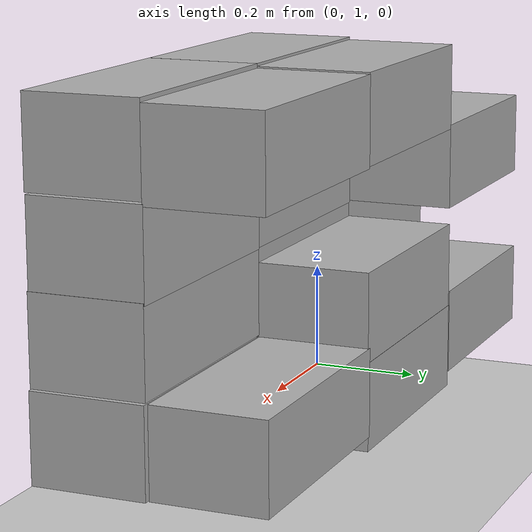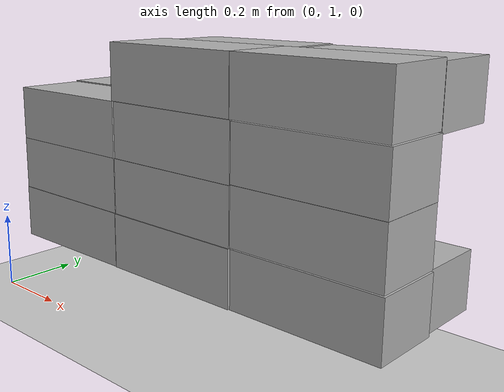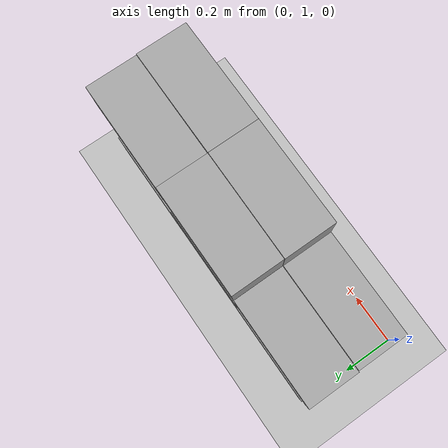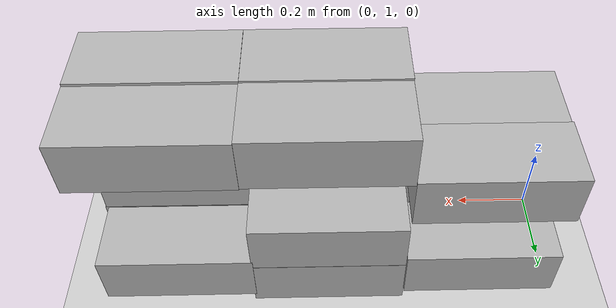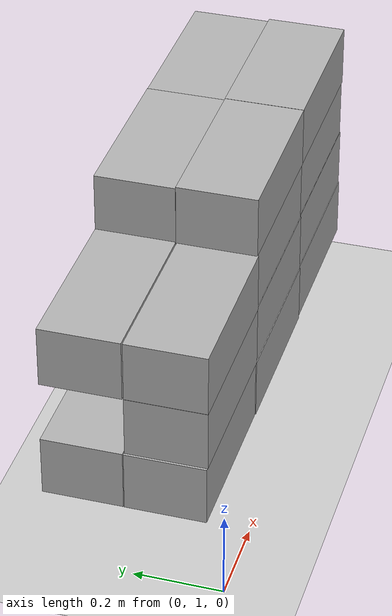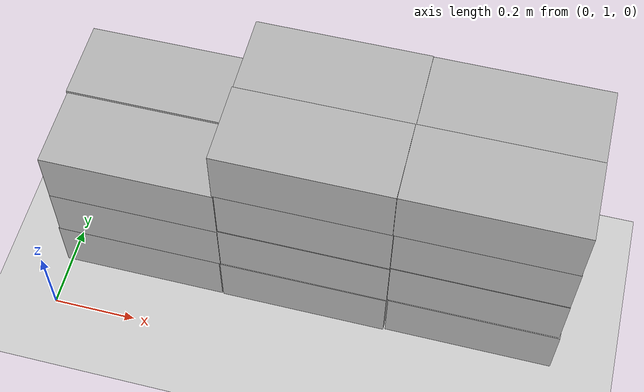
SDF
<sdf version="1.7">
 <world name="default">
  <model name="ground_plane">
   <static>1</static>
   <link name="link">
    <collision name="collision">
     <geometry><plane><normal>0 0 1</normal><size>100 100</size></plane></geometry>
     <surface>
      <contact><collide_bitmask>65535</collide_bitmask></contact>
      <friction><ode><mu>100</mu><mu2>50</mu2></ode></friction>
     </surface>
    </collision>
    <visual name="visual">
     <cast_shadows>0</cast_shadows>
     <geometry><plane><normal>0 0 1</normal><size>100 100</size></plane></geometry>
     <material>
      <script><uri>file://media/materials/scripts/gazebo.material</uri><name>Gazebo/Gray</name></script>
     </material>
    </visual>
   </link>
  </model>
  <model name="box_38_18_14">
   <link name="link_0">
    <inertial>
     <mass>2.5</mass>
     <inertia>
      <ixx>0.0108332</ixx>
      <ixy>0</ixy>
      <ixz>0</ixz>
      <iyy>0.0341665</iyy>
      <iyz>0</iyz>
      <izz>0.0368332</izz>
     </inertia>
    </inertial>
    <visual name="visual">
     <geometry><box><size>0.38 0.18 0.14</size></box></geometry>
     <material>
      <lighting>1</lighting>
      <script><uri>file://media/materials/scripts/cardpaper.material</uri><name>cardpaper</name></script>
      <shader type="pixel"><normal_map>__default__</normal_map></shader>
      <ambient>0.3 0.3 0.3 1</ambient>
      <diffuse>0.7 0.7 0.7 1</diffuse>
      <specular>0.01 0.01 0.01 1</specular>
      <emissive>0 0 0 1</emissive>
     </material>
    </visual>
    <collision name="collision">
     <geometry><box><size>0.38 0.18 0.14</size></box></geometry>
     <surface>
      <friction>
       <ode><mu>0.6</mu><mu2>0.6</mu2><fdir1>0 0 0</fdir1><slip1>0</slip1><slip2>0</slip2></ode>
       <torsional>
        <coefficient>1</coefficient>
        <patch_radius>0</patch_radius>
        <surface_radius>0</surface_radius>
        <use_patch_radius>1</use_patch_radius>
        <ode><slip>0</slip></ode>
       </torsional>
      </friction>
      <bounce><restitution_coefficient>0</restitution_coefficient><threshold>1e+06</threshold></bounce>
      <contact>
       <collide_without_contact>0</collide_without_contact>
       <collide_without_contact_bitmask>1</collide_without_contact_bitmask>
       <collide_bitmask>1</collide_bitmask>
       <ode>
        <soft_cfm>0</soft_cfm>
        <soft_erp>0.2</soft_erp>
        <kp>1e+13</kp>
        <kd>1</kd>
        <max_vel>0.01</max_vel>
        <min_depth>0.01</min_depth>
       </ode>
       <bullet>
        <split_impulse>1</split_impulse>
        <split_impulse_penetration_threshold>-0.01</split_impulse_penetration_threshold>
        <soft_cfm>0</soft_cfm>
        <soft_erp>0.2</soft_erp>
        <kp>1e+13</kp>
        <kd>1</kd>
       </bullet>
      </contact>
     </surface>
    </collision>
   </link>
   <static>0</static>
   <pose>0.990718 1.14029 0.63626 0.000484 0.001138 0.001894</pose>
  </model>
  <model name="box_38_18_14_0">
   <link name="link_0">
    <inertial>
     <mass>2.5</mass>
     <inertia>
      <ixx>0.0108332</ixx>
      <ixy>0</ixy>
      <ixz>0</ixz>
      <iyy>0.0341665</iyy>
      <iyz>0</iyz>
      <izz>0.0368332</izz>
     </inertia>
    </inertial>
    <visual name="visual">
     <geometry><box><size>0.38 0.18 0.14</size></box></geometry>
     <material>
      <lighting>1</lighting>
      <script><uri>file://media/materials/scripts/cardpaper.material</uri><name>cardpaper</name></script>
      <shader type="pixel"><normal_map>__default__</normal_map></shader>
      <ambient>0.3 0.3 0.3 1</ambient>
      <diffuse>0.7 0.7 0.7 1</diffuse>
      <specular>0.01 0.01 0.01 1</specular>
      <emissive>0 0 0 1</emissive>
     </material>
    </visual>
    <collision name="collision">
     <geometry><box><size>0.38 0.18 0.14</size></box></geometry>
     <surface>
      <friction>
       <ode><mu>0.6</mu><mu2>0.6</mu2><fdir1>0 0 0</fdir1><slip1>0</slip1><slip2>0</slip2></ode>
       <torsional>
        <coefficient>1</coefficient>
        <patch_radius>0</patch_radius>
        <surface_radius>0</surface_radius>
        <use_patch_radius>1</use_patch_radius>
        <ode><slip>0</slip></ode>
       </torsional>
      </friction>
      <bounce><restitution_coefficient>0</restitution_coefficient><threshold>1e+06</threshold></bounce>
      <contact>
       <collide_without_contact>0</collide_without_contact>
       <collide_without_contact_bitmask>1</collide_without_contact_bitmask>
       <collide_bitmask>1</collide_bitmask>
       <ode>
        <soft_cfm>0</soft_cfm>
        <soft_erp>0.2</soft_erp>
        <kp>1e+13</kp>
        <kd>1</kd>
        <max_vel>0.01</max_vel>
        <min_depth>0.01</min_depth>
       </ode>
       <bullet>
        <split_impulse>1</split_impulse>
        <split_impulse_penetration_threshold>-0.01</split_impulse_penetration_threshold>
        <soft_cfm>0</soft_cfm>
        <soft_erp>0.2</soft_erp>
        <kp>1e+13</kp>
        <kd>1</kd>
       </bullet>
      </contact>
     </surface>
    </collision>
   </link>
   <static>0</static>
   <pose>0.610379 1.13953 0.636527 0.0002 0.000296 0.000292</pose>
  </model>
  <model name="box_38_18_14_1">
   <link name="link_0">
    <inertial>
     <mass>2.5</mass>
     <inertia>
      <ixx>0.0108332</ixx>
      <ixy>0</ixy>
      <ixz>0</ixz>
      <iyy>0.0341665</iyy>
      <iyz>0</iyz>
      <izz>0.0368332</izz>
     </inertia>
    </inertial>
    <visual name="visual">
     <geometry><box><size>0.38 0.18 0.14</size></box></geometry>
     <material>
      <lighting>1</lighting>
      <script><uri>file://media/materials/scripts/cardpaper.material</uri><name>cardpaper</name></script>
      <shader type="pixel"><normal_map>__default__</normal_map></shader>
      <ambient>0.3 0.3 0.3 1</ambient>
      <diffuse>0.7 0.7 0.7 1</diffuse>
      <specular>0.01 0.01 0.01 1</specular>
      <emissive>0 0 0 1</emissive>
     </material>
    </visual>
    <collision name="collision">
     <geometry><box><size>0.38 0.18 0.14</size></box></geometry>
     <surface>
      <friction>
       <ode><mu>0.6</mu><mu2>0.6</mu2><fdir1>0 0 0</fdir1><slip1>0</slip1><slip2>0</slip2></ode>
       <torsional>
        <coefficient>1</coefficient>
        <patch_radius>0</patch_radius>
        <surface_radius>0</surface_radius>
        <use_patch_radius>1</use_patch_radius>
        <ode><slip>0</slip></ode>
       </torsional>
      </friction>
      <bounce><restitution_coefficient>0</restitution_coefficient><threshold>1e+06</threshold></bounce>
      <contact>
       <collide_without_contact>0</collide_without_contact>
       <collide_without_contact_bitmask>1</collide_without_contact_bitmask>
       <collide_bitmask>1</collide_bitmask>
       <ode>
        <soft_cfm>0</soft_cfm>
        <soft_erp>0.2</soft_erp>
        <kp>1e+13</kp>
        <kd>1</kd>
        <max_vel>0.01</max_vel>
        <min_depth>0.01</min_depth>
       </ode>
       <bullet>
        <split_impulse>1</split_impulse>
        <split_impulse_penetration_threshold>-0.01</split_impulse_penetration_threshold>
        <soft_cfm>0</soft_cfm>
        <soft_erp>0.2</soft_erp>
        <kp>1e+13</kp>
        <kd>1</kd>
       </bullet>
      </contact>
     </surface>
    </collision>
   </link>
   <static>1</static>
   <pose>0.995594 1.14055 0.215337 -2.4e-05 -3.2e-05 -0.000547</pose>
  </model>
  <model name="box_38_18_14_2">
   <link name="link_0">
    <inertial>
     <mass>2.5</mass>
     <inertia>
      <ixx>0.0108332</ixx>
      <ixy>0</ixy>
      <ixz>0</ixz>
      <iyy>0.0341665</iyy>
      <iyz>0</iyz>
      <izz>0.0368332</izz>
     </inertia>
    </inertial>
    <visual name="visual">
     <geometry><box><size>0.38 0.18 0.14</size></box></geometry>
     <material>
      <lighting>1</lighting>
      <script><uri>file://media/materials/scripts/cardpaper.material</uri><name>cardpaper</name></script>
      <shader type="pixel"><normal_map>__default__</normal_map></shader>
      <ambient>0.3 0.3 0.3 1</ambient>
      <diffuse>0.7 0.7 0.7 1</diffuse>
      <specular>0.01 0.01 0.01 1</specular>
      <emissive>0 0 0 1</emissive>
     </material>
    </visual>
    <collision name="collision">
     <geometry><box><size>0.38 0.18 0.14</size></box></geometry>
     <surface>
      <friction>
       <ode><mu>0.6</mu><mu2>0.6</mu2><fdir1>0 0 0</fdir1><slip1>0</slip1><slip2>0</slip2></ode>
       <torsional>
        <coefficient>1</coefficient>
        <patch_radius>0</patch_radius>
        <surface_radius>0</surface_radius>
        <use_patch_radius>1</use_patch_radius>
        <ode><slip>0</slip></ode>
       </torsional>
      </friction>
      <bounce><restitution_coefficient>0</restitution_coefficient><threshold>1e+06</threshold></bounce>
      <contact>
       <collide_without_contact>0</collide_without_contact>
       <collide_without_contact_bitmask>1</collide_without_contact_bitmask>
       <collide_bitmask>1</collide_bitmask>
       <ode>
        <soft_cfm>0</soft_cfm>
        <soft_erp>0.2</soft_erp>
        <kp>1e+13</kp>
        <kd>1</kd>
        <max_vel>0.01</max_vel>
        <min_depth>0.01</min_depth>
       </ode>
       <bullet>
        <split_impulse>1</split_impulse>
        <split_impulse_penetration_threshold>-0.01</split_impulse_penetration_threshold>
        <soft_cfm>0</soft_cfm>
        <soft_erp>0.2</soft_erp>
        <kp>1e+13</kp>
        <kd>1</kd>
       </bullet>
      </contact>
     </surface>
    </collision>
   </link>
   <static>1</static>
   <pose>0.61176 1.13834 0.214923 3.5e-05 -1.8e-05 0.000435</pose>
  </model>
  <model name="box_38_18_14_3">
   <link name="link_0">
    <inertial>
     <mass>2.5</mass>
     <inertia>
      <ixx>0.0108332</ixx>
      <ixy>0</ixy>
      <ixz>0</ixz>
      <iyy>0.0341665</iyy>
      <iyz>0</iyz>
      <izz>0.0368332</izz>
     </inertia>
    </inertial>
    <visual name="visual">
     <geometry><box><size>0.38 0.18 0.14</size></box></geometry>
     <material>
      <lighting>1</lighting>
      <script><uri>file://media/materials/scripts/cardpaper.material</uri><name>cardpaper</name></script>
      <shader type="pixel"><normal_map>__default__</normal_map></shader>
      <ambient>0.3 0.3 0.3 1</ambient>
      <diffuse>0.7 0.7 0.7 1</diffuse>
      <specular>0.01 0.01 0.01 1</specular>
      <emissive>0 0 0 1</emissive>
     </material>
    </visual>
    <collision name="collision">
     <geometry><box><size>0.38 0.18 0.14</size></box></geometry>
     <surface>
      <friction>
       <ode><mu>0.6</mu><mu2>0.6</mu2><fdir1>0 0 0</fdir1><slip1>0</slip1><slip2>0</slip2></ode>
       <torsional>
        <coefficient>1</coefficient>
        <patch_radius>0</patch_radius>
        <surface_radius>0</surface_radius>
        <use_patch_radius>1</use_patch_radius>
        <ode><slip>0</slip></ode>
       </torsional>
      </friction>
      <bounce><restitution_coefficient>0</restitution_coefficient><threshold>1e+06</threshold></bounce>
      <contact>
       <collide_without_contact>0</collide_without_contact>
       <collide_without_contact_bitmask>1</collide_without_contact_bitmask>
       <collide_bitmask>1</collide_bitmask>
       <ode>
        <soft_cfm>0</soft_cfm>
        <soft_erp>0.2</soft_erp>
        <kp>1e+13</kp>
        <kd>1</kd>
        <max_vel>0.01</max_vel>
        <min_depth>0.01</min_depth>
       </ode>
       <bullet>
        <split_impulse>1</split_impulse>
        <split_impulse_penetration_threshold>-0.01</split_impulse_penetration_threshold>
        <soft_cfm>0</soft_cfm>
        <soft_erp>0.2</soft_erp>
        <kp>1e+13</kp>
        <kd>1</kd>
       </bullet>
      </contact>
     </surface>
    </collision>
   </link>
   <static>1</static>
   <pose>0.229172 1.13951 0.215224 2.7e-05 -2e-05 5e-06</pose>
  </model>
  <model name="box_38_18_14_4">
   <link name="link_0">
    <inertial>
     <mass>2.5</mass>
     <inertia>
      <ixx>0.0108332</ixx>
      <ixy>0</ixy>
      <ixz>0</ixz>
      <iyy>0.0341665</iyy>
      <iyz>0</iyz>
      <izz>0.0368332</izz>
     </inertia>
    </inertial>
    <visual name="visual">
     <geometry><box><size>0.38 0.18 0.14</size></box></geometry>
     <material>
      <lighting>1</lighting>
      <script><uri>file://media/materials/scripts/cardpaper.material</uri><name>cardpaper</name></script>
      <shader type="pixel"><normal_map>__default__</normal_map></shader>
      <ambient>0.3 0.3 0.3 1</ambient>
      <diffuse>0.7 0.7 0.7 1</diffuse>
      <specular>0.01 0.01 0.01 1</specular>
      <emissive>0 0 0 1</emissive>
     </material>
    </visual>
    <collision name="collision">
     <geometry><box><size>0.38 0.18 0.14</size></box></geometry>
     <surface>
      <friction>
       <ode><mu>0.6</mu><mu2>0.6</mu2><fdir1>0 0 0</fdir1><slip1>0</slip1><slip2>0</slip2></ode>
       <torsional>
        <coefficient>1</coefficient>
        <patch_radius>0</patch_radius>
        <surface_radius>0</surface_radius>
        <use_patch_radius>1</use_patch_radius>
        <ode><slip>0</slip></ode>
       </torsional>
      </friction>
      <bounce><restitution_coefficient>0</restitution_coefficient><threshold>1e+06</threshold></bounce>
      <contact>
       <collide_without_contact>0</collide_without_contact>
       <collide_without_contact_bitmask>1</collide_without_contact_bitmask>
       <collide_bitmask>1</collide_bitmask>
       <ode>
        <soft_cfm>0</soft_cfm>
        <soft_erp>0.2</soft_erp>
        <kp>1e+13</kp>
        <kd>1</kd>
        <max_vel>0.01</max_vel>
        <min_depth>0.01</min_depth>
       </ode>
       <bullet>
        <split_impulse>1</split_impulse>
        <split_impulse_penetration_threshold>-0.01</split_impulse_penetration_threshold>
        <soft_cfm>0</soft_cfm>
        <soft_erp>0.2</soft_erp>
        <kp>1e+13</kp>
        <kd>1</kd>
       </bullet>
      </contact>
     </surface>
    </collision>
   </link>
   <static>1</static>
   <pose>0.98709 1.3217 0.21457 -2.4e-05 -1.9e-05 -1.8e-05</pose>
  </model>
  <model name="box_38_18_14_5">
   <link name="link_0">
    <inertial>
     <mass>2.5</mass>
     <inertia>
      <ixx>0.0108332</ixx>
      <ixy>0</ixy>
      <ixz>0</ixz>
      <iyy>0.0341665</iyy>
      <iyz>0</iyz>
      <izz>0.0368332</izz>
     </inertia>
    </inertial>
    <visual name="visual">
     <geometry><box><size>0.38 0.18 0.14</size></box></geometry>
     <material>
      <lighting>1</lighting>
      <script><uri>file://media/materials/scripts/cardpaper.material</uri><name>cardpaper</name></script>
      <shader type="pixel"><normal_map>__default__</normal_map></shader>
      <ambient>0.3 0.3 0.3 1</ambient>
      <diffuse>0.7 0.7 0.7 1</diffuse>
      <specular>0.01 0.01 0.01 1</specular>
      <emissive>0 0 0 1</emissive>
     </material>
    </visual>
    <collision name="collision">
     <geometry><box><size>0.38 0.18 0.14</size></box></geometry>
     <surface>
      <friction>
       <ode><mu>0.6</mu><mu2>0.6</mu2><fdir1>0 0 0</fdir1><slip1>0</slip1><slip2>0</slip2></ode>
       <torsional>
        <coefficient>1</coefficient>
        <patch_radius>0</patch_radius>
        <surface_radius>0</surface_radius>
        <use_patch_radius>1</use_patch_radius>
        <ode><slip>0</slip></ode>
       </torsional>
      </friction>
      <bounce><restitution_coefficient>0</restitution_coefficient><threshold>1e+06</threshold></bounce>
      <contact>
       <collide_without_contact>0</collide_without_contact>
       <collide_without_contact_bitmask>1</collide_without_contact_bitmask>
       <collide_bitmask>1</collide_bitmask>
       <ode>
        <soft_cfm>0</soft_cfm>
        <soft_erp>0.2</soft_erp>
        <kp>1e+13</kp>
        <kd>1</kd>
        <max_vel>0.01</max_vel>
        <min_depth>0.01</min_depth>
       </ode>
       <bullet>
        <split_impulse>1</split_impulse>
        <split_impulse_penetration_threshold>-0.01</split_impulse_penetration_threshold>
        <soft_cfm>0</soft_cfm>
        <soft_erp>0.2</soft_erp>
        <kp>1e+13</kp>
        <kd>1</kd>
       </bullet>
      </contact>
     </surface>
    </collision>
   </link>
   <static>1</static>
   <pose>0.61137 1.32116 0.191996 -1e-06 -2.4e-05 -0.000217</pose>
  </model>
  <model name="box_38_18_14_6">
   <link name="link_0">
    <inertial>
     <mass>2.5</mass>
     <inertia>
      <ixx>0.0108332</ixx>
      <ixy>0</ixy>
      <ixz>0</ixz>
      <iyy>0.0341665</iyy>
      <iyz>0</iyz>
      <izz>0.0368332</izz>
     </inertia>
    </inertial>
    <visual name="visual">
     <geometry><box><size>0.38 0.18 0.14</size></box></geometry>
     <material>
      <lighting>1</lighting>
      <script><uri>file://media/materials/scripts/cardpaper.material</uri><name>cardpaper</name></script>
      <shader type="pixel"><normal_map>__default__</normal_map></shader>
      <ambient>0.3 0.3 0.3 1</ambient>
      <diffuse>0.7 0.7 0.7 1</diffuse>
      <specular>0.01 0.01 0.01 1</specular>
      <emissive>0 0 0 1</emissive>
     </material>
    </visual>
    <collision name="collision">
     <geometry><box><size>0.38 0.18 0.14</size></box></geometry>
     <surface>
      <friction>
       <ode><mu>0.6</mu><mu2>0.6</mu2><fdir1>0 0 0</fdir1><slip1>0</slip1><slip2>0</slip2></ode>
       <torsional>
        <coefficient>1</coefficient>
        <patch_radius>0</patch_radius>
        <surface_radius>0</surface_radius>
        <use_patch_radius>1</use_patch_radius>
        <ode><slip>0</slip></ode>
       </torsional>
      </friction>
      <bounce><restitution_coefficient>0</restitution_coefficient><threshold>1e+06</threshold></bounce>
      <contact>
       <collide_without_contact>0</collide_without_contact>
       <collide_without_contact_bitmask>1</collide_without_contact_bitmask>
       <collide_bitmask>1</collide_bitmask>
       <ode>
        <soft_cfm>0</soft_cfm>
        <soft_erp>0.2</soft_erp>
        <kp>1e+13</kp>
        <kd>1</kd>
        <max_vel>0.01</max_vel>
        <min_depth>0.01</min_depth>
       </ode>
       <bullet>
        <split_impulse>1</split_impulse>
        <split_impulse_penetration_threshold>-0.01</split_impulse_penetration_threshold>
        <soft_cfm>0</soft_cfm>
        <soft_erp>0.2</soft_erp>
        <kp>1e+13</kp>
        <kd>1</kd>
       </bullet>
      </contact>
     </surface>
    </collision>
   </link>
   <static>1</static>
   <pose>0.228982 1.32157 0.215841 2.7e-05 -2.1e-05 0.000396</pose>
  </model>
  <model name="box_38_18_14_13">
   <link name="link_0">
    <inertial>
     <mass>2.5</mass>
     <inertia>
      <ixx>0.0108332</ixx>
      <ixy>0</ixy>
      <ixz>0</ixz>
      <iyy>0.0341665</iyy>
      <iyz>0</iyz>
      <izz>0.0368332</izz>
     </inertia>
    </inertial>
    <visual name="visual">
     <geometry><box><size>0.38 0.18 0.14</size></box></geometry>
     <material>
      <lighting>1</lighting>
      <script><uri>file://media/materials/scripts/cardpaper.material</uri><name>cardpaper</name></script>
      <shader type="pixel"><normal_map>__default__</normal_map></shader>
      <ambient>0.3 0.3 0.3 1</ambient>
      <diffuse>0.7 0.7 0.7 1</diffuse>
      <specular>0.01 0.01 0.01 1</specular>
      <emissive>0 0 0 1</emissive>
     </material>
    </visual>
    <collision name="collision">
     <geometry><box><size>0.38 0.18 0.14</size></box></geometry>
     <surface>
      <friction>
       <ode><mu>0.6</mu><mu2>0.6</mu2><fdir1>0 0 0</fdir1><slip1>0</slip1><slip2>0</slip2></ode>
       <torsional>
        <coefficient>1</coefficient>
        <patch_radius>0</patch_radius>
        <surface_radius>0</surface_radius>
        <use_patch_radius>1</use_patch_radius>
        <ode><slip>0</slip></ode>
       </torsional>
      </friction>
      <bounce><restitution_coefficient>0</restitution_coefficient><threshold>1e+06</threshold></bounce>
      <contact>
       <collide_without_contact>0</collide_without_contact>
       <collide_without_contact_bitmask>1</collide_without_contact_bitmask>
       <collide_bitmask>1</collide_bitmask>
       <ode>
        <soft_cfm>0</soft_cfm>
        <soft_erp>0.2</soft_erp>
        <kp>1e+13</kp>
        <kd>1</kd>
        <max_vel>0.01</max_vel>
        <min_depth>0.01</min_depth>
       </ode>
       <bullet>
        <split_impulse>1</split_impulse>
        <split_impulse_penetration_threshold>-0.01</split_impulse_penetration_threshold>
        <soft_cfm>0</soft_cfm>
        <soft_erp>0.2</soft_erp>
        <kp>1e+13</kp>
        <kd>1</kd>
       </bullet>
      </contact>
     </surface>
    </collision>
   </link>
   <static>1</static>
   <pose>0.99286 1.14146 0.357504 0.000539 -3.4e-05 7.4e-05</pose>
  </model>
  <model name="box_38_18_14_14">
   <link name="link_0">
    <inertial>
     <mass>2.5</mass>
     <inertia>
      <ixx>0.0108332</ixx>
      <ixy>0</ixy>
      <ixz>0</ixz>
      <iyy>0.0341665</iyy>
      <iyz>0</iyz>
      <izz>0.0368332</izz>
     </inertia>
    </inertial>
    <visual name="visual">
     <geometry><box><size>0.38 0.18 0.14</size></box></geometry>
     <material>
      <lighting>1</lighting>
      <script><uri>file://media/materials/scripts/cardpaper.material</uri><name>cardpaper</name></script>
      <shader type="pixel"><normal_map>__default__</normal_map></shader>
      <ambient>0.3 0.3 0.3 1</ambient>
      <diffuse>0.7 0.7 0.7 1</diffuse>
      <specular>0.01 0.01 0.01 1</specular>
      <emissive>0 0 0 1</emissive>
     </material>
    </visual>
    <collision name="collision">
     <geometry><box><size>0.38 0.18 0.14</size></box></geometry>
     <surface>
      <friction>
       <ode><mu>0.6</mu><mu2>0.6</mu2><fdir1>0 0 0</fdir1><slip1>0</slip1><slip2>0</slip2></ode>
       <torsional>
        <coefficient>1</coefficient>
        <patch_radius>0</patch_radius>
        <surface_radius>0</surface_radius>
        <use_patch_radius>1</use_patch_radius>
        <ode><slip>0</slip></ode>
       </torsional>
      </friction>
      <bounce><restitution_coefficient>0</restitution_coefficient><threshold>1e+06</threshold></bounce>
      <contact>
       <collide_without_contact>0</collide_without_contact>
       <collide_without_contact_bitmask>1</collide_without_contact_bitmask>
       <collide_bitmask>1</collide_bitmask>
       <ode>
        <soft_cfm>0</soft_cfm>
        <soft_erp>0.2</soft_erp>
        <kp>1e+13</kp>
        <kd>1</kd>
        <max_vel>0.01</max_vel>
        <min_depth>0.01</min_depth>
       </ode>
       <bullet>
        <split_impulse>1</split_impulse>
        <split_impulse_penetration_threshold>-0.01</split_impulse_penetration_threshold>
        <soft_cfm>0</soft_cfm>
        <soft_erp>0.2</soft_erp>
        <kp>1e+13</kp>
        <kd>1</kd>
       </bullet>
      </contact>
     </surface>
    </collision>
   </link>
   <static>1</static>
   <pose>0.612101 1.13996 0.355387 0.000133 0.00021 -0.000244</pose>
  </model>
  <model name="box_38_18_14_15">
   <link name="link_0">
    <inertial>
     <mass>2.5</mass>
     <inertia>
      <ixx>0.0108332</ixx>
      <ixy>0</ixy>
      <ixz>0</ixz>
      <iyy>0.0341665</iyy>
      <iyz>0</iyz>
      <izz>0.0368332</izz>
     </inertia>
    </inertial>
    <visual name="visual">
     <geometry><box><size>0.38 0.18 0.14</size></box></geometry>
     <material>
      <lighting>1</lighting>
      <script><uri>file://media/materials/scripts/cardpaper.material</uri><name>cardpaper</name></script>
      <shader type="pixel"><normal_map>__default__</normal_map></shader>
      <ambient>0.3 0.3 0.3 1</ambient>
      <diffuse>0.7 0.7 0.7 1</diffuse>
      <specular>0.01 0.01 0.01 1</specular>
      <emissive>0 0 0 1</emissive>
     </material>
    </visual>
    <collision name="collision">
     <geometry><box><size>0.38 0.18 0.14</size></box></geometry>
     <surface>
      <friction>
       <ode><mu>0.6</mu><mu2>0.6</mu2><fdir1>0 0 0</fdir1><slip1>0</slip1><slip2>0</slip2></ode>
       <torsional>
        <coefficient>1</coefficient>
        <patch_radius>0</patch_radius>
        <surface_radius>0</surface_radius>
        <use_patch_radius>1</use_patch_radius>
        <ode><slip>0</slip></ode>
       </torsional>
      </friction>
      <bounce><restitution_coefficient>0</restitution_coefficient><threshold>1e+06</threshold></bounce>
      <contact>
       <collide_without_contact>0</collide_without_contact>
       <collide_without_contact_bitmask>1</collide_without_contact_bitmask>
       <collide_bitmask>1</collide_bitmask>
       <ode>
        <soft_cfm>0</soft_cfm>
        <soft_erp>0.2</soft_erp>
        <kp>1e+13</kp>
        <kd>1</kd>
        <max_vel>0.01</max_vel>
        <min_depth>0.01</min_depth>
       </ode>
       <bullet>
        <split_impulse>1</split_impulse>
        <split_impulse_penetration_threshold>-0.01</split_impulse_penetration_threshold>
        <soft_cfm>0</soft_cfm>
        <soft_erp>0.2</soft_erp>
        <kp>1e+13</kp>
        <kd>1</kd>
       </bullet>
      </contact>
     </surface>
    </collision>
   </link>
   <static>1</static>
   <pose>0.233033 1.13804 0.35663 3e-05 -6.7e-05 6.3e-05</pose>
  </model>
  <model name="box_38_18_14_17">
   <link name="link_0">
    <inertial>
     <mass>2.5</mass>
     <inertia>
      <ixx>0.0108332</ixx>
      <ixy>0</ixy>
      <ixz>0</ixz>
      <iyy>0.0341665</iyy>
      <iyz>0</iyz>
      <izz>0.0368332</izz>
     </inertia>
    </inertial>
    <visual name="visual">
     <geometry><box><size>0.38 0.18 0.14</size></box></geometry>
     <material>
      <lighting>1</lighting>
      <script><uri>file://media/materials/scripts/cardpaper.material</uri><name>cardpaper</name></script>
      <shader type="pixel"><normal_map>__default__</normal_map></shader>
      <ambient>0.3 0.3 0.3 1</ambient>
      <diffuse>0.7 0.7 0.7 1</diffuse>
      <specular>0.01 0.01 0.01 1</specular>
      <emissive>0 0 0 1</emissive>
     </material>
    </visual>
    <collision name="collision">
     <geometry><box><size>0.38 0.18 0.14</size></box></geometry>
     <surface>
      <friction>
       <ode><mu>0.6</mu><mu2>0.6</mu2><fdir1>0 0 0</fdir1><slip1>0</slip1><slip2>0</slip2></ode>
       <torsional>
        <coefficient>1</coefficient>
        <patch_radius>0</patch_radius>
        <surface_radius>0</surface_radius>
        <use_patch_radius>1</use_patch_radius>
        <ode><slip>0</slip></ode>
       </torsional>
      </friction>
      <bounce><restitution_coefficient>0</restitution_coefficient><threshold>1e+06</threshold></bounce>
      <contact>
       <collide_without_contact>0</collide_without_contact>
       <collide_without_contact_bitmask>1</collide_without_contact_bitmask>
       <collide_bitmask>1</collide_bitmask>
       <ode>
        <soft_cfm>0</soft_cfm>
        <soft_erp>0.2</soft_erp>
        <kp>1e+13</kp>
        <kd>1</kd>
        <max_vel>0.01</max_vel>
        <min_depth>0.01</min_depth>
       </ode>
       <bullet>
        <split_impulse>1</split_impulse>
        <split_impulse_penetration_threshold>-0.01</split_impulse_penetration_threshold>
        <soft_cfm>0</soft_cfm>
        <soft_erp>0.2</soft_erp>
        <kp>1e+13</kp>
        <kd>1</kd>
       </bullet>
      </contact>
     </surface>
    </collision>
   </link>
   <static>1</static>
   <pose>0.611247 1.3206 0.33189 8.3e-05 -0.000105 -0.000245</pose>
  </model>
  <model name="transporter">
   <link name="link_0">
    <inertial>
     <mass>1.05863</mass>
     <inertia>
      <ixx>2.63027</ixx>
      <ixy>0</ixy>
      <ixz>0</ixz>
      <iyy>0.0914909</iyy>
      <iyz>0</iyz>
      <izz>2.71522</izz>
     </inertia>
    </inertial>
    <pose>0 0 -0 0.04625 -0 0</pose>
    <kinematic>1</kinematic>
    <visual name="visual">
     <geometry><box><size>1 5.45693 0.192575</size></box></geometry>
     <material>
      <lighting>1</lighting>
      <script><uri>file://media/materials/scripts/gazebo.material</uri><name>Gazebo/Steps</name></script>
      <shader type="pixel"><normal_map>__default__</normal_map></shader>
      <ambient>0.3 0.3 0.3 1</ambient>
      <diffuse>0.7 0.7 0.7 1</diffuse>
      <specular>0.01 0.01 0.01 1</specular>
      <emissive>0 0 0 1</emissive>
     </material>
    </visual>
    <collision name="collision">
     <geometry><box><size>1 5.45693 0.192575</size></box></geometry>
     <surface>
      <friction>
       <ode><mu>0</mu><mu2>3.46945e-18</mu2><fdir1>0 0 0</fdir1><slip1>0</slip1><slip2>0</slip2></ode>
       <torsional>
        <coefficient>1</coefficient>
        <patch_radius>0</patch_radius>
        <surface_radius>0</surface_radius>
        <use_patch_radius>1</use_patch_radius>
        <ode><slip>0</slip></ode>
       </torsional>
      </friction>
      <bounce><restitution_coefficient>0</restitution_coefficient><threshold>1e+06</threshold></bounce>
      <contact>
       <collide_without_contact>0</collide_without_contact>
       <collide_without_contact_bitmask>1</collide_without_contact_bitmask>
       <collide_bitmask>1</collide_bitmask>
       <ode>
        <soft_cfm>0</soft_cfm>
        <soft_erp>0.2</soft_erp>
        <kp>1e+13</kp>
        <kd>1</kd>
        <max_vel>0.01</max_vel>
        <min_depth>0</min_depth>
       </ode>
       <bullet>
        <split_impulse>1</split_impulse>
        <split_impulse_penetration_threshold>-0.01</split_impulse_penetration_threshold>
        <soft_cfm>0</soft_cfm>
        <soft_erp>0.2</soft_erp>
        <kp>1e+13</kp>
        <kd>1</kd>
       </bullet>
      </contact>
     </surface>
    </collision>
   </link>
   <static>1</static>
   <pose>3.04192 -3.96626 0.225869 0 -0 0.589007</pose>
  </model>
  <model name="box_38_18_14_27">
   <link name="link_0">
    <inertial>
     <mass>2.5</mass>
     <inertia>
      <ixx>0.0108332</ixx>
      <ixy>0</ixy>
      <ixz>0</ixz>
      <iyy>0.0341665</iyy>
      <iyz>0</iyz>
      <izz>0.0368332</izz>
     </inertia>
    </inertial>
    <visual name="visual">
     <geometry><box><size>0.38 0.18 0.14</size></box></geometry>
     <material>
      <lighting>1</lighting>
      <script><uri>file://media/materials/scripts/cardpaper.material</uri><name>cardpaper</name></script>
      <shader type="pixel"><normal_map>__default__</normal_map></shader>
      <ambient>0.3 0.3 0.3 1</ambient>
      <diffuse>0.7 0.7 0.7 1</diffuse>
      <specular>0.01 0.01 0.01 1</specular>
      <emissive>0 0 0 1</emissive>
     </material>
    </visual>
    <collision name="collision">
     <geometry><box><size>0.38 0.18 0.14</size></box></geometry>
     <surface>
      <friction>
       <ode><mu>0.6</mu><mu2>0.6</mu2><fdir1>0 0 0</fdir1><slip1>0</slip1><slip2>0</slip2></ode>
       <torsional>
        <coefficient>1</coefficient>
        <patch_radius>0</patch_radius>
        <surface_radius>0</surface_radius>
        <use_patch_radius>1</use_patch_radius>
        <ode><slip>0</slip></ode>
       </torsional>
      </friction>
      <bounce><restitution_coefficient>0</restitution_coefficient><threshold>1e+06</threshold></bounce>
      <contact>
       <collide_without_contact>0</collide_without_contact>
       <collide_without_contact_bitmask>1</collide_without_contact_bitmask>
       <collide_bitmask>1</collide_bitmask>
       <ode>
        <soft_cfm>0</soft_cfm>
        <soft_erp>0.2</soft_erp>
        <kp>1e+13</kp>
        <kd>1</kd>
        <max_vel>0.01</max_vel>
        <min_depth>0.01</min_depth>
       </ode>
       <bullet>
        <split_impulse>1</split_impulse>
        <split_impulse_penetration_threshold>-0.01</split_impulse_penetration_threshold>
        <soft_cfm>0</soft_cfm>
        <soft_erp>0.2</soft_erp>
        <kp>1e+13</kp>
        <kd>1</kd>
       </bullet>
      </contact>
     </surface>
    </collision>
   </link>
   <static>1</static>
   <pose>0.992366 1.14274 0.493477 0 -0 0</pose>
  </model>
  <model name="box_38_18_14_28">
   <link name="link_0">
    <inertial>
     <mass>2.5</mass>
     <inertia>
      <ixx>0.0108332</ixx>
      <ixy>0</ixy>
      <ixz>0</ixz>
      <iyy>0.0341665</iyy>
      <iyz>0</iyz>
      <izz>0.0368332</izz>
     </inertia>
    </inertial>
    <visual name="visual">
     <geometry><box><size>0.38 0.18 0.14</size></box></geometry>
     <material>
      <lighting>1</lighting>
      <script><uri>file://media/materials/scripts/cardpaper.material</uri><name>cardpaper</name></script>
      <shader type="pixel"><normal_map>__default__</normal_map></shader>
      <ambient>0.3 0.3 0.3 1</ambient>
      <diffuse>0.7 0.7 0.7 1</diffuse>
      <specular>0.01 0.01 0.01 1</specular>
      <emissive>0 0 0 1</emissive>
     </material>
    </visual>
    <collision name="collision">
     <geometry><box><size>0.38 0.18 0.14</size></box></geometry>
     <surface>
      <friction>
       <ode><mu>0.6</mu><mu2>0.6</mu2><fdir1>0 0 0</fdir1><slip1>0</slip1><slip2>0</slip2></ode>
       <torsional>
        <coefficient>1</coefficient>
        <patch_radius>0</patch_radius>
        <surface_radius>0</surface_radius>
        <use_patch_radius>1</use_patch_radius>
        <ode><slip>0</slip></ode>
       </torsional>
      </friction>
      <bounce><restitution_coefficient>0</restitution_coefficient><threshold>1e+06</threshold></bounce>
      <contact>
       <collide_without_contact>0</collide_without_contact>
       <collide_without_contact_bitmask>1</collide_without_contact_bitmask>
       <collide_bitmask>1</collide_bitmask>
       <ode>
        <soft_cfm>0</soft_cfm>
        <soft_erp>0.2</soft_erp>
        <kp>1e+13</kp>
        <kd>1</kd>
        <max_vel>0.01</max_vel>
        <min_depth>0.01</min_depth>
       </ode>
       <bullet>
        <split_impulse>1</split_impulse>
        <split_impulse_penetration_threshold>-0.01</split_impulse_penetration_threshold>
        <soft_cfm>0</soft_cfm>
        <soft_erp>0.2</soft_erp>
        <kp>1e+13</kp>
        <kd>1</kd>
       </bullet>
      </contact>
     </surface>
    </collision>
   </link>
   <static>1</static>
   <pose>0.611495 1.14145 0.49522 0 -0 0</pose>
  </model>
  <model name="box_38_18_14_29">
   <link name="link_0">
    <inertial>
     <mass>2.5</mass>
     <inertia>
      <ixx>0.0108332</ixx>
      <ixy>0</ixy>
      <ixz>0</ixz>
      <iyy>0.0341665</iyy>
      <iyz>0</iyz>
      <izz>0.0368332</izz>
     </inertia>
    </inertial>
    <visual name="visual">
     <geometry><box><size>0.38 0.18 0.14</size></box></geometry>
     <material>
      <lighting>1</lighting>
      <script><uri>file://media/materials/scripts/cardpaper.material</uri><name>cardpaper</name></script>
      <shader type="pixel"><normal_map>__default__</normal_map></shader>
      <ambient>0.3 0.3 0.3 1</ambient>
      <diffuse>0.7 0.7 0.7 1</diffuse>
      <specular>0.01 0.01 0.01 1</specular>
      <emissive>0 0 0 1</emissive>
     </material>
    </visual>
    <collision name="collision">
     <geometry><box><size>0.38 0.18 0.14</size></box></geometry>
     <surface>
      <friction>
       <ode><mu>0.6</mu><mu2>0.6</mu2><fdir1>0 0 0</fdir1><slip1>0</slip1><slip2>0</slip2></ode>
       <torsional>
        <coefficient>1</coefficient>
        <patch_radius>0</patch_radius>
        <surface_radius>0</surface_radius>
        <use_patch_radius>1</use_patch_radius>
        <ode><slip>0</slip></ode>
       </torsional>
      </friction>
      <bounce><restitution_coefficient>0</restitution_coefficient><threshold>1e+06</threshold></bounce>
      <contact>
       <collide_without_contact>0</collide_without_contact>
       <collide_without_contact_bitmask>1</collide_without_contact_bitmask>
       <collide_bitmask>1</collide_bitmask>
       <ode>
        <soft_cfm>0</soft_cfm>
        <soft_erp>0.2</soft_erp>
        <kp>1e+13</kp>
        <kd>1</kd>
        <max_vel>0.01</max_vel>
        <min_depth>0.01</min_depth>
       </ode>
       <bullet>
        <split_impulse>1</split_impulse>
        <split_impulse_penetration_threshold>-0.01</split_impulse_penetration_threshold>
        <soft_cfm>0</soft_cfm>
        <soft_erp>0.2</soft_erp>
        <kp>1e+13</kp>
        <kd>1</kd>
       </bullet>
      </contact>
     </surface>
    </collision>
   </link>
   <static>1</static>
   <pose>0.233607 1.13776 0.495877 0 -0 0</pose>
  </model>
  <model name="box_38_18_14_30">
   <link name="link_0">
    <inertial>
     <mass>2.5</mass>
     <inertia>
      <ixx>0.0108332</ixx>
      <ixy>0</ixy>
      <ixz>0</ixz>
      <iyy>0.0341665</iyy>
      <iyz>0</iyz>
      <izz>0.0368332</izz>
     </inertia>
    </inertial>
    <visual name="visual">
     <geometry><box><size>0.38 0.18 0.14</size></box></geometry>
     <material>
      <lighting>1</lighting>
      <script><uri>file://media/materials/scripts/cardpaper.material</uri><name>cardpaper</name></script>
      <shader type="pixel"><normal_map>__default__</normal_map></shader>
      <ambient>0.3 0.3 0.3 1</ambient>
      <diffuse>0.7 0.7 0.7 1</diffuse>
      <specular>0.01 0.01 0.01 1</specular>
      <emissive>0 0 0 1</emissive>
     </material>
    </visual>
    <collision name="collision">
     <geometry><box><size>0.38 0.18 0.14</size></box></geometry>
     <surface>
      <friction>
       <ode><mu>0.6</mu><mu2>0.6</mu2><fdir1>0 0 0</fdir1><slip1>0</slip1><slip2>0</slip2></ode>
       <torsional>
        <coefficient>1</coefficient>
        <patch_radius>0</patch_radius>
        <surface_radius>0</surface_radius>
        <use_patch_radius>1</use_patch_radius>
        <ode><slip>0</slip></ode>
       </torsional>
      </friction>
      <bounce><restitution_coefficient>0</restitution_coefficient><threshold>1e+06</threshold></bounce>
      <contact>
       <collide_without_contact>0</collide_without_contact>
       <collide_without_contact_bitmask>1</collide_without_contact_bitmask>
       <collide_bitmask>1</collide_bitmask>
       <ode>
        <soft_cfm>0</soft_cfm>
        <soft_erp>0.2</soft_erp>
        <kp>1e+13</kp>
        <kd>1</kd>
        <max_vel>0.01</max_vel>
        <min_depth>0.01</min_depth>
       </ode>
       <bullet>
        <split_impulse>1</split_impulse>
        <split_impulse_penetration_threshold>-0.01</split_impulse_penetration_threshold>
        <soft_cfm>0</soft_cfm>
        <soft_erp>0.2</soft_erp>
        <kp>1e+13</kp>
        <kd>1</kd>
       </bullet>
      </contact>
     </surface>
    </collision>
   </link>
   <static>1</static>
   <pose>0.230465 1.31957 0.498625 0 -0 0</pose>
  </model>
  <model name="box_38_18_14_31">
   <link name="link_0">
    <inertial>
     <mass>2.5</mass>
     <inertia>
      <ixx>0.0108332</ixx>
      <ixy>0</ixy>
      <ixz>0</ixz>
      <iyy>0.0341665</iyy>
      <iyz>0</iyz>
      <izz>0.0368332</izz>
     </inertia>
    </inertial>
    <visual name="visual">
     <geometry><box><size>0.38 0.18 0.14</size></box></geometry>
     <material>
      <lighting>1</lighting>
      <script><uri>file://media/materials/scripts/cardpaper.material</uri><name>cardpaper</name></script>
      <shader type="pixel"><normal_map>__default__</normal_map></shader>
      <ambient>0.3 0.3 0.3 1</ambient>
      <diffuse>0.7 0.7 0.7 1</diffuse>
      <specular>0.01 0.01 0.01 1</specular>
      <emissive>0 0 0 1</emissive>
     </material>
    </visual>
    <collision name="collision">
     <geometry><box><size>0.38 0.18 0.14</size></box></geometry>
     <surface>
      <friction>
       <ode><mu>0.6</mu><mu2>0.6</mu2><fdir1>0 0 0</fdir1><slip1>0</slip1><slip2>0</slip2></ode>
       <torsional>
        <coefficient>1</coefficient>
        <patch_radius>0</patch_radius>
        <surface_radius>0</surface_radius>
        <use_patch_radius>1</use_patch_radius>
        <ode><slip>0</slip></ode>
       </torsional>
      </friction>
      <bounce><restitution_coefficient>0</restitution_coefficient><threshold>1e+06</threshold></bounce>
      <contact>
       <collide_without_contact>0</collide_without_contact>
       <collide_without_contact_bitmask>1</collide_without_contact_bitmask>
       <collide_bitmask>1</collide_bitmask>
       <ode>
        <soft_cfm>0</soft_cfm>
        <soft_erp>0.2</soft_erp>
        <kp>1e+13</kp>
        <kd>1</kd>
        <max_vel>0.01</max_vel>
        <min_depth>0.01</min_depth>
       </ode>
       <bullet>
        <split_impulse>1</split_impulse>
        <split_impulse_penetration_threshold>-0.01</split_impulse_penetration_threshold>
        <soft_cfm>0</soft_cfm>
        <soft_erp>0.2</soft_erp>
        <kp>1e+13</kp>
        <kd>1</kd>
       </bullet>
      </contact>
     </surface>
    </collision>
   </link>
   <static>1</static>
   <pose>0.611336 1.32004 0.63236 0 -0 0</pose>
  </model>
  <model name="box_38_18_14_32">
   <link name="link_0">
    <inertial>
     <mass>2.5</mass>
     <inertia>
      <ixx>0.0108332</ixx>
      <ixy>0</ixy>
      <ixz>0</ixz>
      <iyy>0.0341665</iyy>
      <iyz>0</iyz>
      <izz>0.0368332</izz>
     </inertia>
    </inertial>
    <visual name="visual">
     <geometry><box><size>0.38 0.18 0.14</size></box></geometry>
     <material>
      <lighting>1</lighting>
      <script><uri>file://media/materials/scripts/cardpaper.material</uri><name>cardpaper</name></script>
      <shader type="pixel"><normal_map>__default__</normal_map></shader>
      <ambient>0.3 0.3 0.3 1</ambient>
      <diffuse>0.7 0.7 0.7 1</diffuse>
      <specular>0.01 0.01 0.01 1</specular>
      <emissive>0 0 0 1</emissive>
     </material>
    </visual>
    <collision name="collision">
     <geometry><box><size>0.38 0.18 0.14</size></box></geometry>
     <surface>
      <friction>
       <ode><mu>0.6</mu><mu2>0.6</mu2><fdir1>0 0 0</fdir1><slip1>0</slip1><slip2>0</slip2></ode>
       <torsional>
        <coefficient>1</coefficient>
        <patch_radius>0</patch_radius>
        <surface_radius>0</surface_radius>
        <use_patch_radius>1</use_patch_radius>
        <ode><slip>0</slip></ode>
       </torsional>
      </friction>
      <bounce><restitution_coefficient>0</restitution_coefficient><threshold>1e+06</threshold></bounce>
      <contact>
       <collide_without_contact>0</collide_without_contact>
       <collide_without_contact_bitmask>1</collide_without_contact_bitmask>
       <collide_bitmask>1</collide_bitmask>
       <ode>
        <soft_cfm>0</soft_cfm>
        <soft_erp>0.2</soft_erp>
        <kp>1e+13</kp>
        <kd>1</kd>
        <max_vel>0.01</max_vel>
        <min_depth>0.01</min_depth>
       </ode>
       <bullet>
        <split_impulse>1</split_impulse>
        <split_impulse_penetration_threshold>-0.01</split_impulse_penetration_threshold>
        <soft_cfm>0</soft_cfm>
        <soft_erp>0.2</soft_erp>
        <kp>1e+13</kp>
        <kd>1</kd>
       </bullet>
      </contact>
     </surface>
    </collision>
   </link>
   <static>1</static>
   <pose>0.991154 1.32077 0.629677 0 -0 0</pose>
  </model>
 </world>
</sdf>
